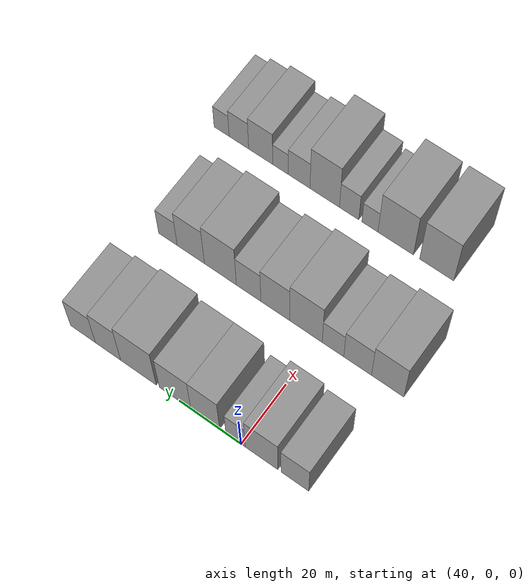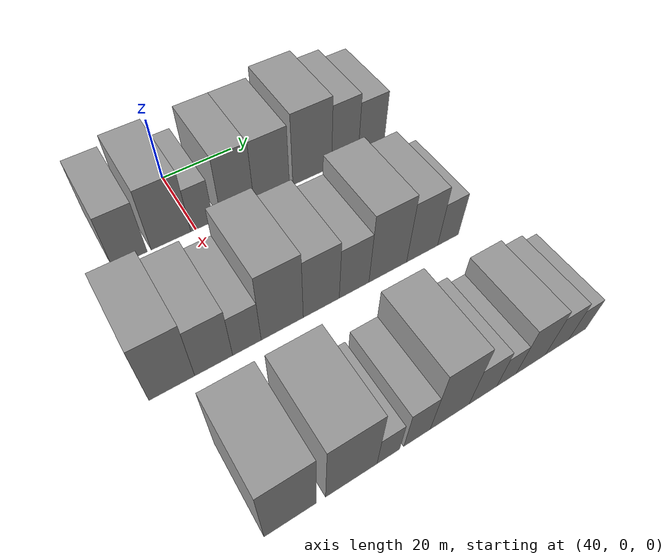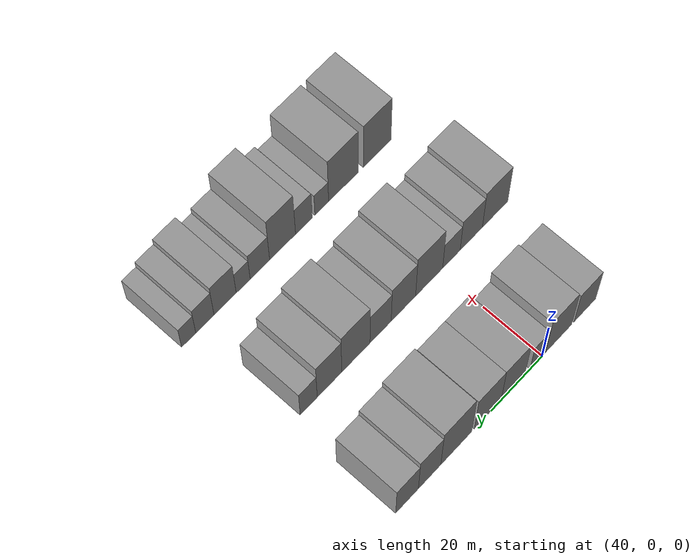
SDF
<sdf version="1.6">
 <world name="default">
  <model name="building_38">
   <static>1</static>
   <pose>50.0000 -16.9877 0 0.000000 0.000000 0.000000</pose>
   <link name="link">
    <pose>0 0 9.00 0 0 0</pose>
    <collision name="collision"><geometry><box><size>20.0000 8.7164 18.0000</size></box></geometry></collision>
    <visual name="visual">
     <cast_shadows>0</cast_shadows>
     <geometry><box><size>20.0000 8.7164 18.0000</size></box></geometry>
     <material>
      <script>
       <uri>model://grey_wall/materials/scripts</uri>
       <uri>model://grey_wall/materials/textures</uri>
       <name>vrc/grey_wall</name>
      </script>
     </material>
    </visual>
   </link>
  </model>
  <model name="building_39">
   <static>1</static>
   <pose>50.0000 -6.4514 0 0.000000 0.000000 0.000000</pose>
   <link name="link">
    <pose>0 0 10.50 0 0 0</pose>
    <collision name="collision"><geometry><box><size>20.0000 10.3563 21.0000</size></box></geometry></collision>
    <visual name="visual">
     <cast_shadows>0</cast_shadows>
     <geometry><box><size>20.0000 10.3563 21.0000</size></box></geometry>
     <material>
      <script>
       <uri>model://grey_wall/materials/scripts</uri>
       <uri>model://grey_wall/materials/textures</uri>
       <name>vrc/grey_wall</name>
      </script>
     </material>
    </visual>
   </link>
  </model>
  <model name="building_40">
   <static>1</static>
   <pose>50.0000 1.8156 0 0.000000 0.000000 0.000000</pose>
   <link name="link">
    <pose>0 0 7.50 0 0 0</pose>
    <collision name="collision"><geometry><box><size>20.0000 6.1777 15.0000</size></box></geometry></collision>
    <visual name="visual">
     <cast_shadows>0</cast_shadows>
     <geometry><box><size>20.0000 6.1777 15.0000</size></box></geometry>
     <material>
      <script>
       <uri>model://grey_wall/materials/scripts</uri>
       <uri>model://grey_wall/materials/textures</uri>
       <name>vrc/grey_wall</name>
      </script>
     </material>
    </visual>
   </link>
  </model>
  <model name="building_41">
   <static>1</static>
   <pose>50.0000 11.5562 0 0.000000 0.000000 0.000000</pose>
   <link name="link">
    <pose>0 0 10.50 0 0 0</pose>
    <collision name="collision"><geometry><box><size>20.0000 9.3035 21.0000</size></box></geometry></collision>
    <visual name="visual">
     <cast_shadows>0</cast_shadows>
     <geometry><box><size>20.0000 9.3035 21.0000</size></box></geometry>
     <material>
      <script>
       <uri>model://grey_wall/materials/scripts</uri>
       <uri>model://grey_wall/materials/textures</uri>
       <name>vrc/grey_wall</name>
      </script>
     </material>
    </visual>
   </link>
  </model>
  <model name="building_42">
   <static>1</static>
   <pose>50.0000 21.3764 0 0.000000 0.000000 0.000000</pose>
   <link name="link">
    <pose>0 0 10.50 0 0 0</pose>
    <collision name="collision"><geometry><box><size>20.0000 10.3369 21.0000</size></box></geometry></collision>
    <visual name="visual">
     <cast_shadows>0</cast_shadows>
     <geometry><box><size>20.0000 10.3369 21.0000</size></box></geometry>
     <material>
      <script>
       <uri>model://grey_wall/materials/scripts</uri>
       <uri>model://grey_wall/materials/textures</uri>
       <name>vrc/grey_wall</name>
      </script>
     </material>
    </visual>
   </link>
  </model>
  <model name="building_43">
   <static>1</static>
   <pose>50.0000 33.4431 0 0.000000 0.000000 0.000000</pose>
   <link name="link">
    <pose>0 0 12.00 0 0 0</pose>
    <collision name="collision"><geometry><box><size>20.0000 11.7965 24.0000</size></box></geometry></collision>
    <visual name="visual">
     <cast_shadows>0</cast_shadows>
     <geometry><box><size>20.0000 11.7965 24.0000</size></box></geometry>
     <material>
      <script>
       <uri>model://grey_wall/materials/scripts</uri>
       <uri>model://grey_wall/materials/textures</uri>
       <name>vrc/grey_wall</name>
      </script>
     </material>
    </visual>
   </link>
  </model>
  <model name="building_44">
   <static>1</static>
   <pose>50.0000 43.5559 0 0.000000 0.000000 0.000000</pose>
   <link name="link">
    <pose>0 0 10.50 0 0 0</pose>
    <collision name="collision"><geometry><box><size>20.0000 8.4291 21.0000</size></box></geometry></collision>
    <visual name="visual">
     <cast_shadows>0</cast_shadows>
     <geometry><box><size>20.0000 8.4291 21.0000</size></box></geometry>
     <material>
      <script>
       <uri>model://grey_wall/materials/scripts</uri>
       <uri>model://grey_wall/materials/textures</uri>
       <name>vrc/grey_wall</name>
      </script>
     </material>
    </visual>
   </link>
  </model>
  <model name="building_45">
   <static>1</static>
   <pose>50.0000 51.9869 0 0.000000 0.000000 0.000000</pose>
   <link name="link">
    <pose>0 0 9.00 0 0 0</pose>
    <collision name="collision"><geometry><box><size>20.0000 8.4329 18.0000</size></box></geometry></collision>
    <visual name="visual">
     <cast_shadows>0</cast_shadows>
     <geometry><box><size>20.0000 8.4329 18.0000</size></box></geometry>
     <material>
      <script>
       <uri>model://grey_wall/materials/scripts</uri>
       <uri>model://grey_wall/materials/textures</uri>
       <name>vrc/grey_wall</name>
      </script>
     </material>
    </visual>
   </link>
  </model>
  <model name="building_115">
   <static>1</static>
   <pose>85.0000 -21.9603 0 0.000000 0.000000 0.000000</pose>
   <link name="link">
    <pose>0 0 10.50 0 0 0</pose>
    <collision name="collision"><geometry><box><size>20.0000 10.2736 21.0000</size></box></geometry></collision>
    <visual name="visual">
     <cast_shadows>0</cast_shadows>
     <geometry><box><size>20.0000 10.2736 21.0000</size></box></geometry>
     <material>
      <script>
       <uri>model://grey_wall/materials/scripts</uri>
       <uri>model://grey_wall/materials/textures</uri>
       <name>vrc/grey_wall</name>
      </script>
     </material>
    </visual>
   </link>
  </model>
  <model name="building_116">
   <static>1</static>
   <pose>85.0000 -12.3924 0 0.000000 0.000000 0.000000</pose>
   <link name="link">
    <pose>0 0 9.00 0 0 0</pose>
    <collision name="collision"><geometry><box><size>20.0000 8.8622 18.0000</size></box></geometry></collision>
    <visual name="visual">
     <cast_shadows>0</cast_shadows>
     <geometry><box><size>20.0000 8.8622 18.0000</size></box></geometry>
     <material>
      <script>
       <uri>model://grey_wall/materials/scripts</uri>
       <uri>model://grey_wall/materials/textures</uri>
       <name>vrc/grey_wall</name>
      </script>
     </material>
    </visual>
   </link>
  </model>
  <model name="building_117">
   <static>1</static>
   <pose>85.0000 -4.4993 0 0.000000 0.000000 0.000000</pose>
   <link name="link">
    <pose>0 0 7.50 0 0 0</pose>
    <collision name="collision"><geometry><box><size>20.0000 6.9240 15.0000</size></box></geometry></collision>
    <visual name="visual">
     <cast_shadows>0</cast_shadows>
     <geometry><box><size>20.0000 6.9240 15.0000</size></box></geometry>
     <material>
      <script>
       <uri>model://grey_wall/materials/scripts</uri>
       <uri>model://grey_wall/materials/textures</uri>
       <name>vrc/grey_wall</name>
      </script>
     </material>
    </visual>
   </link>
  </model>
  <model name="building_118">
   <static>1</static>
   <pose>85.0000 4.2602 0 0.000000 0.000000 0.000000</pose>
   <link name="link">
    <pose>0 0 12.00 0 0 0</pose>
    <collision name="collision"><geometry><box><size>20.0000 10.5949 24.0000</size></box></geometry></collision>
    <visual name="visual">
     <cast_shadows>0</cast_shadows>
     <geometry><box><size>20.0000 10.5949 24.0000</size></box></geometry>
     <material>
      <script>
       <uri>model://grey_wall/materials/scripts</uri>
       <uri>model://grey_wall/materials/textures</uri>
       <name>vrc/grey_wall</name>
      </script>
     </material>
    </visual>
   </link>
  </model>
  <model name="building_119">
   <static>1</static>
   <pose>85.0000 14.2905 0 0.000000 0.000000 0.000000</pose>
   <link name="link">
    <pose>0 0 10.50 0 0 0</pose>
    <collision name="collision"><geometry><box><size>20.0000 9.4658 21.0000</size></box></geometry></collision>
    <visual name="visual">
     <cast_shadows>0</cast_shadows>
     <geometry><box><size>20.0000 9.4658 21.0000</size></box></geometry>
     <material>
      <script>
       <uri>model://grey_wall/materials/scripts</uri>
       <uri>model://grey_wall/materials/textures</uri>
       <name>vrc/grey_wall</name>
      </script>
     </material>
    </visual>
   </link>
  </model>
  <model name="building_120">
   <static>1</static>
   <pose>85.0000 23.0882 0 0.000000 0.000000 0.000000</pose>
   <link name="link">
    <pose>0 0 9.00 0 0 0</pose>
    <collision name="collision"><geometry><box><size>20.0000 8.1296 18.0000</size></box></geometry></collision>
    <visual name="visual">
     <cast_shadows>0</cast_shadows>
     <geometry><box><size>20.0000 8.1296 18.0000</size></box></geometry>
     <material>
      <script>
       <uri>model://grey_wall/materials/scripts</uri>
       <uri>model://grey_wall/materials/textures</uri>
       <name>vrc/grey_wall</name>
      </script>
     </material>
    </visual>
   </link>
  </model>
  <model name="building_121">
   <static>1</static>
   <pose>85.0000 32.5141 0 0.000000 0.000000 0.000000</pose>
   <link name="link">
    <pose>0 0 12.00 0 0 0</pose>
    <collision name="collision"><geometry><box><size>20.0000 10.7223 24.0000</size></box></geometry></collision>
    <visual name="visual">
     <cast_shadows>0</cast_shadows>
     <geometry><box><size>20.0000 10.7223 24.0000</size></box></geometry>
     <material>
      <script>
       <uri>model://grey_wall/materials/scripts</uri>
       <uri>model://grey_wall/materials/textures</uri>
       <name>vrc/grey_wall</name>
      </script>
     </material>
    </visual>
   </link>
  </model>
  <model name="building_122">
   <static>1</static>
   <pose>85.0000 42.4765 0 0.000000 0.000000 0.000000</pose>
   <link name="link">
    <pose>0 0 10.50 0 0 0</pose>
    <collision name="collision"><geometry><box><size>20.0000 9.2026 21.0000</size></box></geometry></collision>
    <visual name="visual">
     <cast_shadows>0</cast_shadows>
     <geometry><box><size>20.0000 9.2026 21.0000</size></box></geometry>
     <material>
      <script>
       <uri>model://grey_wall/materials/scripts</uri>
       <uri>model://grey_wall/materials/textures</uri>
       <name>vrc/grey_wall</name>
      </script>
     </material>
    </visual>
   </link>
  </model>
  <model name="building_123">
   <static>1</static>
   <pose>85.0000 50.2540 0 0.000000 0.000000 0.000000</pose>
   <link name="link">
    <pose>0 0 7.50 0 0 0</pose>
    <collision name="collision"><geometry><box><size>20.0000 6.3524 15.0000</size></box></geometry></collision>
    <visual name="visual">
     <cast_shadows>0</cast_shadows>
     <geometry><box><size>20.0000 6.3524 15.0000</size></box></geometry>
     <material>
      <script>
       <uri>model://grey_wall/materials/scripts</uri>
       <uri>model://grey_wall/materials/textures</uri>
       <name>vrc/grey_wall</name>
      </script>
     </material>
    </visual>
   </link>
  </model>
  <model name="building_184">
   <static>1</static>
   <pose>120.0000 -14.2489 0 0.000000 0.000000 0.000000</pose>
   <link name="link">
    <pose>0 0 12.00 0 0 0</pose>
    <collision name="collision"><geometry><box><size>20.0000 11.0534 24.0000</size></box></geometry></collision>
    <visual name="visual">
     <cast_shadows>0</cast_shadows>
     <geometry><box><size>20.0000 11.0534 24.0000</size></box></geometry>
     <material>
      <script>
       <uri>model://grey_wall/materials/scripts</uri>
       <uri>model://grey_wall/materials/textures</uri>
       <name>vrc/grey_wall</name>
      </script>
     </material>
    </visual>
   </link>
  </model>
  <model name="building_185">
   <static>1</static>
   <pose>120.0000 -0.9003 0 0.000000 0.000000 0.000000</pose>
   <link name="link">
    <pose>0 0 12.00 0 0 0</pose>
    <collision name="collision"><geometry><box><size>20.0000 11.6438 24.0000</size></box></geometry></collision>
    <visual name="visual">
     <cast_shadows>0</cast_shadows>
     <geometry><box><size>20.0000 11.6438 24.0000</size></box></geometry>
     <material>
      <script>
       <uri>model://grey_wall/materials/scripts</uri>
       <uri>model://grey_wall/materials/textures</uri>
       <name>vrc/grey_wall</name>
      </script>
     </material>
    </visual>
   </link>
  </model>
  <model name="building_186">
   <static>1</static>
   <pose>120.0000 7.5963 0 0.000000 0.000000 0.000000</pose>
   <link name="link">
    <pose>0 0 6.00 0 0 0</pose>
    <collision name="collision"><geometry><box><size>20.0000 5.3492 12.0000</size></box></geometry></collision>
    <visual name="visual">
     <cast_shadows>0</cast_shadows>
     <geometry><box><size>20.0000 5.3492 12.0000</size></box></geometry>
     <material>
      <script>
       <uri>model://grey_wall/materials/scripts</uri>
       <uri>model://grey_wall/materials/textures</uri>
       <name>vrc/grey_wall</name>
      </script>
     </material>
    </visual>
   </link>
  </model>
  <model name="building_187">
   <static>1</static>
   <pose>120.0000 14.4896 0 0.000000 0.000000 0.000000</pose>
   <link name="link">
    <pose>0 0 7.50 0 0 0</pose>
    <collision name="collision"><geometry><box><size>20.0000 6.4374 15.0000</size></box></geometry></collision>
    <visual name="visual">
     <cast_shadows>0</cast_shadows>
     <geometry><box><size>20.0000 6.4374 15.0000</size></box></geometry>
     <material>
      <script>
       <uri>model://grey_wall/materials/scripts</uri>
       <uri>model://grey_wall/materials/textures</uri>
       <name>vrc/grey_wall</name>
      </script>
     </material>
    </visual>
   </link>
  </model>
  <model name="building_188">
   <static>1</static>
   <pose>120.0000 22.6671 0 0.000000 0.000000 0.000000</pose>
   <link name="link">
    <pose>0 0 12.00 0 0 0</pose>
    <collision name="collision"><geometry><box><size>20.0000 9.9176 24.0000</size></box></geometry></collision>
    <visual name="visual">
     <cast_shadows>0</cast_shadows>
     <geometry><box><size>20.0000 9.9176 24.0000</size></box></geometry>
     <material>
      <script>
       <uri>model://grey_wall/materials/scripts</uri>
       <uri>model://grey_wall/materials/textures</uri>
       <name>vrc/grey_wall</name>
      </script>
     </material>
    </visual>
   </link>
  </model>
  <model name="building_189">
   <static>1</static>
   <pose>120.0000 31.3139 0 0.000000 0.000000 0.000000</pose>
   <link name="link">
    <pose>0 0 7.50 0 0 0</pose>
    <collision name="collision"><geometry><box><size>20.0000 7.3759 15.0000</size></box></geometry></collision>
    <visual name="visual">
     <cast_shadows>0</cast_shadows>
     <geometry><box><size>20.0000 7.3759 15.0000</size></box></geometry>
     <material>
      <script>
       <uri>model://grey_wall/materials/scripts</uri>
       <uri>model://grey_wall/materials/textures</uri>
       <name>vrc/grey_wall</name>
      </script>
     </material>
    </visual>
   </link>
  </model>
  <model name="building_190">
   <static>1</static>
   <pose>120.0000 37.6358 0 0.000000 0.000000 0.000000</pose>
   <link name="link">
    <pose>0 0 6.00 0 0 0</pose>
    <collision name="collision"><geometry><box><size>20.0000 5.2679 12.0000</size></box></geometry></collision>
    <visual name="visual">
     <cast_shadows>0</cast_shadows>
     <geometry><box><size>20.0000 5.2679 12.0000</size></box></geometry>
     <material>
      <script>
       <uri>model://grey_wall/materials/scripts</uri>
       <uri>model://grey_wall/materials/textures</uri>
       <name>vrc/grey_wall</name>
      </script>
     </material>
    </visual>
   </link>
  </model>
  <model name="building_191">
   <static>1</static>
   <pose>120.0000 44.4134 0 0.000000 0.000000 0.000000</pose>
   <link name="link">
    <pose>0 0 9.00 0 0 0</pose>
    <collision name="collision"><geometry><box><size>20.0000 8.2873 18.0000</size></box></geometry></collision>
    <visual name="visual">
     <cast_shadows>0</cast_shadows>
     <geometry><box><size>20.0000 8.2873 18.0000</size></box></geometry>
     <material>
      <script>
       <uri>model://grey_wall/materials/scripts</uri>
       <uri>model://grey_wall/materials/textures</uri>
       <name>vrc/grey_wall</name>
      </script>
     </material>
    </visual>
   </link>
  </model>
  <model name="building_192">
   <static>1</static>
   <pose>120.0000 51.9278 0 0.000000 0.000000 0.000000</pose>
   <link name="link">
    <pose>0 0 7.50 0 0 0</pose>
    <collision name="collision"><geometry><box><size>20.0000 6.7415 15.0000</size></box></geometry></collision>
    <visual name="visual">
     <cast_shadows>0</cast_shadows>
     <geometry><box><size>20.0000 6.7415 15.0000</size></box></geometry>
     <material>
      <script>
       <uri>model://grey_wall/materials/scripts</uri>
       <uri>model://grey_wall/materials/textures</uri>
       <name>vrc/grey_wall</name>
      </script>
     </material>
    </visual>
   </link>
  </model>
  <model name="building_193">
   <static>1</static>
   <pose>120.0000 57.9097 0 0.000000 0.000000 0.000000</pose>
   <link name="link">
    <pose>0 0 6.00 0 0 0</pose>
    <collision name="collision"><geometry><box><size>20.0000 5.2223 12.0000</size></box></geometry></collision>
    <visual name="visual">
     <cast_shadows>0</cast_shadows>
     <geometry><box><size>20.0000 5.2223 12.0000</size></box></geometry>
     <material>
      <script>
       <uri>model://grey_wall/materials/scripts</uri>
       <uri>model://grey_wall/materials/textures</uri>
       <name>vrc/grey_wall</name>
      </script>
     </material>
    </visual>
   </link>
  </model>
 </world>
</sdf>
